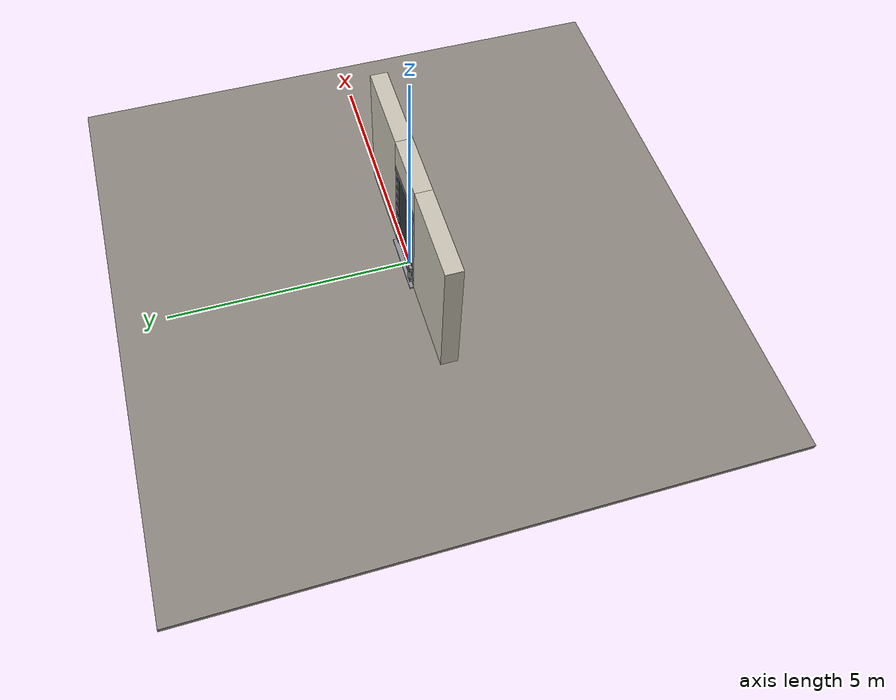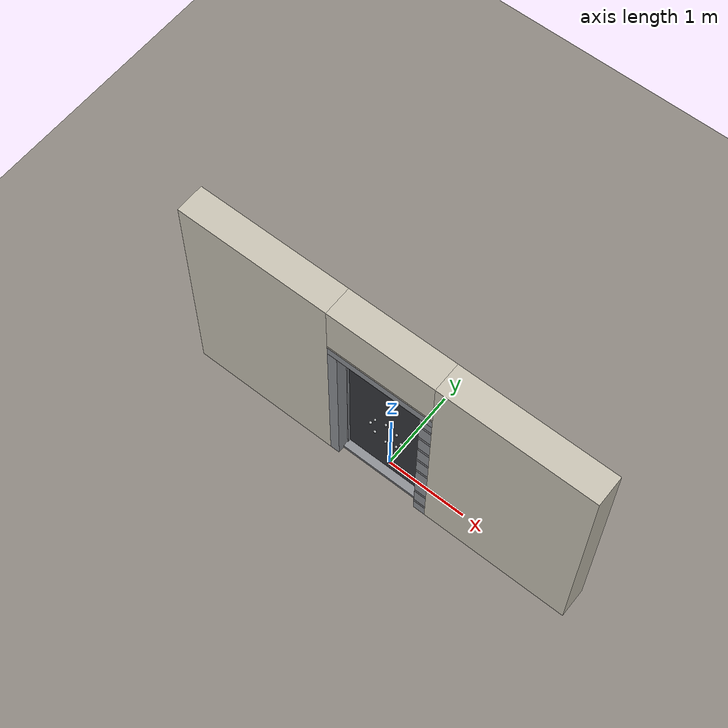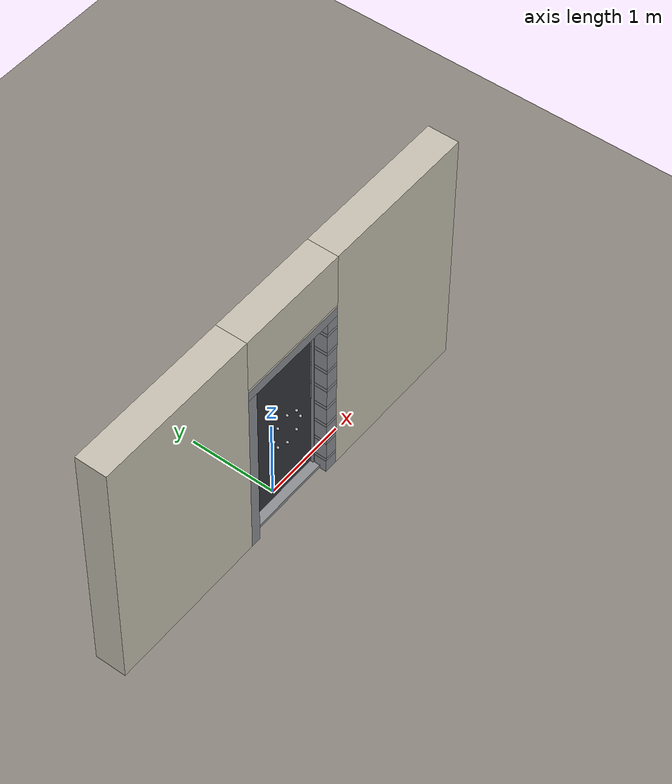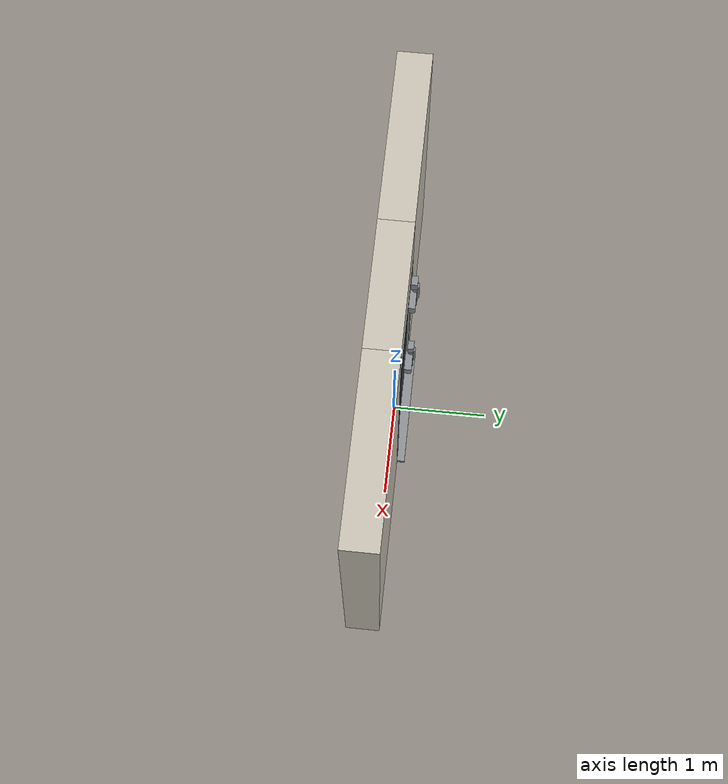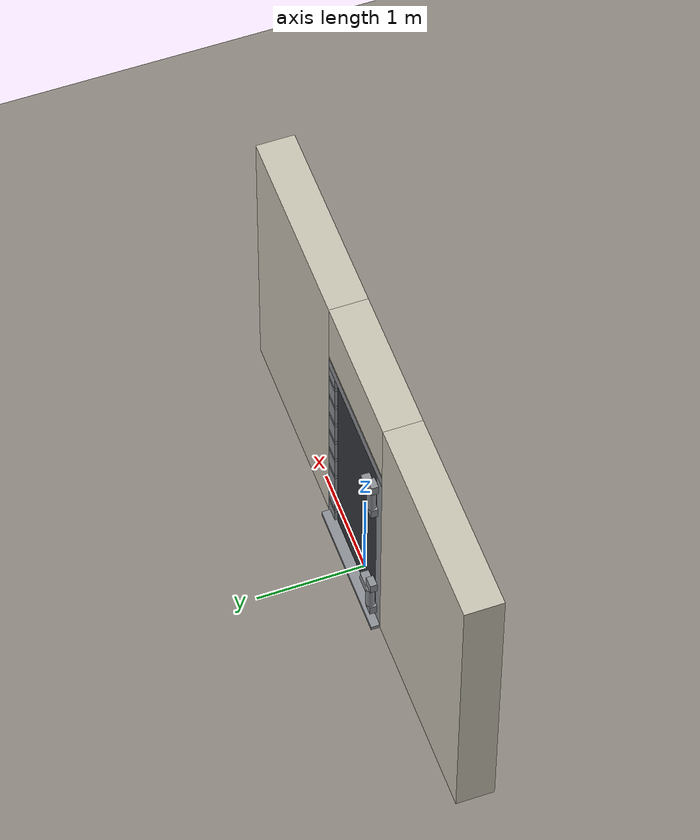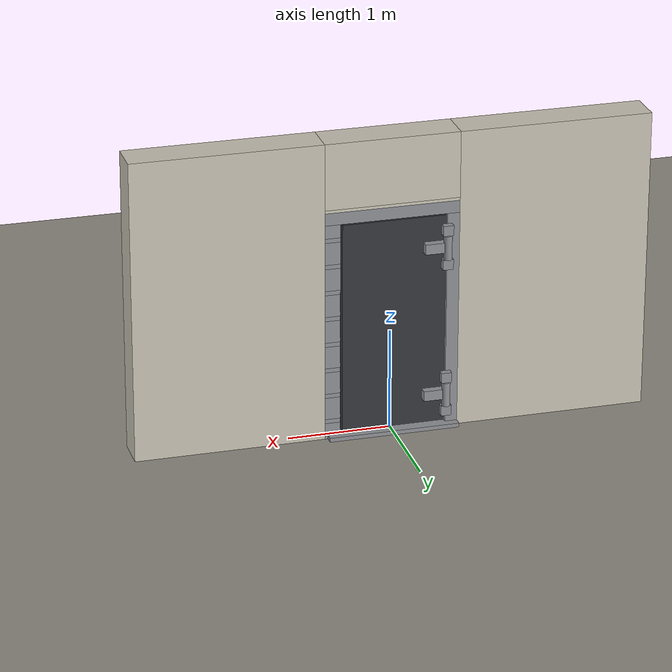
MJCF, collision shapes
<?xml version="1.0" ?>
<mujoco model="db0921_vault_full">
  <compiler angle="radian" meshdir="../../hardware" texturedir="../../textures" autolimits="true" inertiafromgeom="false"/>
  <option timestep="0.002" integrator="implicitfast" cone="elliptic" impratio="10" noslip_iterations="3">
    <flag multiccd="enable"/>
  </option>
  <size memory="16M"/>
  <default>
    <geom condim="4" solref="0.005 1" solimp="0.95 0.99 0.001"/>
    <joint solreflimit="0.005 1" solimplimit="0.95 0.99 0.001"/>
    <tendon solreflimit="0.005 1"/>
    <equality solref="0.002 1"/>
  </default>
  <visual>
    <headlight ambient="0.4 0.4 0.4" diffuse="0.7 0.7 0.7" specular="0.2 0.2 0.2"/>
    <quality shadowsize="4096"/>
    <map znear="0.01" zfar="60"/>
  </visual>
  <asset>
    <mesh name="wheel_3a0bfbe305" file="wheel_3a0bfbe305.obj"/>
    <material name="mat_floor" rgba="0.55 0.53 0.5 1" specular="0.2" shininess="0.15" reflectance="0"/>
    <material name="mat_wall" rgba="0.78 0.76 0.7 1" specular="0.2" shininess="0.1" reflectance="0"/>
    <material name="mat_leaf" rgba="0.2 0.21 0.23 1" specular="0.23" shininess="0.31" reflectance="0.02"/>
    <material name="mat_op_stainless" rgba="0.75 0.76 0.77 1" specular="0.8" shininess="0.65" reflectance="0.4"/>
    <material name="mat_trim" rgba="0.85 0.66 0.3 1" specular="0.8" shininess="0.75" reflectance="0.4"/>
    <material name="mat_vault_bolt" rgba="0.75 0.76 0.77 1" specular="0.8" shininess="0.65" reflectance="0.4"/>
    <material name="mat_frame" rgba="0.55 0.56 0.58 1" specular="0.8" shininess="0.55" reflectance="0.4"/>
    <material name="mat_hinge" rgba="0.55 0.56 0.58 1" specular="0.8" shininess="0.55" reflectance="0.4"/>
    <texture name="skybox" type="skybox" builtin="gradient" rgb1="0.6 0.7 0.85" rgb2="0.9 0.92 0.95" width="256" height="256"/>
  </asset>
  <worldbody>
    <light name="sun" pos="1.5 -2.5 4" dir="-0.3 0.5 -0.8" directional="true" diffuse="0.8 0.8 0.8" specular="0.3 0.3 0.3" castshadow="true"/>
    <light name="fill" pos="-1.5 2.5 3" dir="0.3 -0.5 -0.7" directional="true" diffuse="0.35 0.35 0.4" castshadow="false"/>
    <camera name="robot_view" pos="0 -2.739375 1.829625" xyaxes="1 0 0 0 0.26963 0.962964" fovy="52"/>
    <camera name="far_view" pos="0 2.579375 1.829625" xyaxes="-1 0 0 0 -0.26963 0.962964" fovy="52"/>
    <camera name="iso" pos="2.021125 -2.313875 2.255125" xyaxes="0.741536 0.670913 0 -0.242917 0.268487 0.932151" fovy="46"/>
    <camera name="detail_handle" pos="0.22 -0.955 1.53" xyaxes="0.97561 0.219512 0 -0.070934 0.315262 0.94635" fovy="38"/>
    <geom name="floor" type="box" size="6 6 0.05" pos="0 0 -0.05" material="mat_floor" group="0" contype="1" conaffinity="1" friction="0.8 0.005 0.0001" density="2400"/>
    <geom name="wall_left" type="box" size="0.932 0.175 1.485" pos="-1.568 -0.08 1.485" material="mat_wall" group="0" contype="1" conaffinity="1" friction="0.6 0.005 0.0001" density="800"/>
    <geom name="wall_right" type="box" size="0.917 0.175 1.485" pos="1.583 -0.08 1.485" material="mat_wall" group="0" contype="1" conaffinity="1" friction="0.6 0.005 0.0001" density="800"/>
    <geom name="wall_header" type="box" size="0.651 0.175 0.325" pos="0.015 -0.08 2.645" material="mat_wall" group="0" contype="1" conaffinity="1" friction="0.6 0.005 0.0001" density="800"/>
    <geom name="jamb_hinge" type="box" size="0.06 0.175 1.085" pos="-0.576 -0.08 1.085" material="mat_frame" group="0" contype="1" conaffinity="1" friction="0.6 0.005 0.0001" density="300"/>
    <geom name="strike_181_wall_n" type="box" size="0.075 0.1185 0.021" pos="0.591 -0.1365 0.18125" material="mat_frame" group="0" contype="1" conaffinity="1" friction="0.6 0.005 0.0001" density="300"/>
    <geom name="strike_181_wall_p" type="box" size="0.075 0.0385 0.021" pos="0.591 0.0565 0.18125" material="mat_frame" group="0" contype="1" conaffinity="1" friction="0.6 0.005 0.0001" density="300"/>
    <geom name="strike_181_back" type="box" size="0.036 0.018 0.021" pos="0.63 0 0.18125" material="mat_frame" group="0" contype="1" conaffinity="1" friction="0.6 0.005 0.0001" density="300"/>
    <geom name="strike_444_wall_n" type="box" size="0.075 0.1185 0.021" pos="0.591 -0.1365 0.44375" material="mat_frame" group="0" contype="1" conaffinity="1" friction="0.6 0.005 0.0001" density="300"/>
    <geom name="strike_444_wall_p" type="box" size="0.075 0.0385 0.021" pos="0.591 0.0565 0.44375" material="mat_frame" group="0" contype="1" conaffinity="1" friction="0.6 0.005 0.0001" density="300"/>
    <geom name="strike_444_back" type="box" size="0.036 0.018 0.021" pos="0.63 0 0.44375" material="mat_frame" group="0" contype="1" conaffinity="1" friction="0.6 0.005 0.0001" density="300"/>
    <geom name="strike_706_wall_n" type="box" size="0.075 0.1185 0.021" pos="0.591 -0.1365 0.70625" material="mat_frame" group="0" contype="1" conaffinity="1" friction="0.6 0.005 0.0001" density="300"/>
    <geom name="strike_706_wall_p" type="box" size="0.075 0.0385 0.021" pos="0.591 0.0565 0.70625" material="mat_frame" group="0" contype="1" conaffinity="1" friction="0.6 0.005 0.0001" density="300"/>
    <geom name="strike_706_back" type="box" size="0.036 0.018 0.021" pos="0.63 0 0.70625" material="mat_frame" group="0" contype="1" conaffinity="1" friction="0.6 0.005 0.0001" density="300"/>
    <geom name="strike_969_wall_n" type="box" size="0.075 0.1185 0.021" pos="0.591 -0.1365 0.96875" material="mat_frame" group="0" contype="1" conaffinity="1" friction="0.6 0.005 0.0001" density="300"/>
    <geom name="strike_969_wall_p" type="box" size="0.075 0.0385 0.021" pos="0.591 0.0565 0.96875" material="mat_frame" group="0" contype="1" conaffinity="1" friction="0.6 0.005 0.0001" density="300"/>
    <geom name="strike_969_back" type="box" size="0.036 0.018 0.021" pos="0.63 0 0.96875" material="mat_frame" group="0" contype="1" conaffinity="1" friction="0.6 0.005 0.0001" density="300"/>
    <geom name="strike_1231_wall_n" type="box" size="0.075 0.1185 0.021" pos="0.591 -0.1365 1.23125" material="mat_frame" group="0" contype="1" conaffinity="1" friction="0.6 0.005 0.0001" density="300"/>
    <geom name="strike_1231_wall_p" type="box" size="0.075 0.0385 0.021" pos="0.591 0.0565 1.23125" material="mat_frame" group="0" contype="1" conaffinity="1" friction="0.6 0.005 0.0001" density="300"/>
    <geom name="strike_1231_back" type="box" size="0.036 0.018 0.021" pos="0.63 0 1.23125" material="mat_frame" group="0" contype="1" conaffinity="1" friction="0.6 0.005 0.0001" density="300"/>
    <geom name="strike_1494_wall_n" type="box" size="0.075 0.1185 0.021" pos="0.591 -0.1365 1.49375" material="mat_frame" group="0" contype="1" conaffinity="1" friction="0.6 0.005 0.0001" density="300"/>
    <geom name="strike_1494_wall_p" type="box" size="0.075 0.0385 0.021" pos="0.591 0.0565 1.49375" material="mat_frame" group="0" contype="1" conaffinity="1" friction="0.6 0.005 0.0001" density="300"/>
    <geom name="strike_1494_back" type="box" size="0.036 0.018 0.021" pos="0.63 0 1.49375" material="mat_frame" group="0" contype="1" conaffinity="1" friction="0.6 0.005 0.0001" density="300"/>
    <geom name="strike_1756_wall_n" type="box" size="0.075 0.1185 0.021" pos="0.591 -0.1365 1.75625" material="mat_frame" group="0" contype="1" conaffinity="1" friction="0.6 0.005 0.0001" density="300"/>
    <geom name="strike_1756_wall_p" type="box" size="0.075 0.0385 0.021" pos="0.591 0.0565 1.75625" material="mat_frame" group="0" contype="1" conaffinity="1" friction="0.6 0.005 0.0001" density="300"/>
    <geom name="strike_1756_back" type="box" size="0.036 0.018 0.021" pos="0.63 0 1.75625" material="mat_frame" group="0" contype="1" conaffinity="1" friction="0.6 0.005 0.0001" density="300"/>
    <geom name="strike_2019_wall_n" type="box" size="0.075 0.1185 0.021" pos="0.591 -0.1365 2.01875" material="mat_frame" group="0" contype="1" conaffinity="1" friction="0.6 0.005 0.0001" density="300"/>
    <geom name="strike_2019_wall_p" type="box" size="0.075 0.0385 0.021" pos="0.591 0.0565 2.01875" material="mat_frame" group="0" contype="1" conaffinity="1" friction="0.6 0.005 0.0001" density="300"/>
    <geom name="strike_2019_back" type="box" size="0.036 0.018 0.021" pos="0.63 0 2.01875" material="mat_frame" group="0" contype="1" conaffinity="1" friction="0.6 0.005 0.0001" density="300"/>
    <geom name="jamb_strike_0" type="box" size="0.075 0.175 0.080125" pos="0.591 -0.08 0.080125" material="mat_frame" group="0" contype="1" conaffinity="1" friction="0.6 0.005 0.0001" density="300"/>
    <geom name="jamb_strike_1" type="box" size="0.075 0.175 0.11025" pos="0.591 -0.08 0.3125" material="mat_frame" group="0" contype="1" conaffinity="1" friction="0.6 0.005 0.0001" density="300"/>
    <geom name="jamb_strike_2" type="box" size="0.075 0.175 0.11025" pos="0.591 -0.08 0.575" material="mat_frame" group="0" contype="1" conaffinity="1" friction="0.6 0.005 0.0001" density="300"/>
    <geom name="jamb_strike_3" type="box" size="0.075 0.175 0.11025" pos="0.591 -0.08 0.8375" material="mat_frame" group="0" contype="1" conaffinity="1" friction="0.6 0.005 0.0001" density="300"/>
    <geom name="jamb_strike_4" type="box" size="0.075 0.175 0.11025" pos="0.591 -0.08 1.1" material="mat_frame" group="0" contype="1" conaffinity="1" friction="0.6 0.005 0.0001" density="300"/>
    <geom name="jamb_strike_5" type="box" size="0.075 0.175 0.11025" pos="0.591 -0.08 1.3625" material="mat_frame" group="0" contype="1" conaffinity="1" friction="0.6 0.005 0.0001" density="300"/>
    <geom name="jamb_strike_6" type="box" size="0.075 0.175 0.11025" pos="0.591 -0.08 1.625" material="mat_frame" group="0" contype="1" conaffinity="1" friction="0.6 0.005 0.0001" density="300"/>
    <geom name="jamb_strike_7" type="box" size="0.075 0.175 0.11025" pos="0.591 -0.08 1.8875" material="mat_frame" group="0" contype="1" conaffinity="1" friction="0.6 0.005 0.0001" density="300"/>
    <geom name="jamb_strike_8" type="box" size="0.075 0.175 0.065125" pos="0.591 -0.08 2.104875" material="mat_frame" group="0" contype="1" conaffinity="1" friction="0.6 0.005 0.0001" density="300"/>
    <geom name="jamb_head" type="box" size="0.651 0.175 0.06" pos="0.015 -0.08 2.23" material="mat_frame" group="0" contype="1" conaffinity="1" friction="0.6 0.005 0.0001" density="300"/>
    <geom name="head_stud" type="box" size="0.651 0.175 0.015" pos="0.015 -0.08 2.305" material="mat_wall" group="0" contype="1" conaffinity="1" friction="0.6 0.005 0.0001" density="500"/>
    <geom name="stop_hinge" type="box" size="0.0055 0.016 1.085" pos="-0.5105 -0.0915 1.085" material="mat_frame" group="0" contype="1" conaffinity="1" friction="0.6 0.005 0.0001" density="300"/>
    <geom name="stop_strike" type="box" size="0.0055 0.016 1.085" pos="0.5105 -0.0915 1.085" material="mat_frame" group="0" contype="1" conaffinity="1" friction="0.6 0.005 0.0001" density="300"/>
    <geom name="stop_head" type="box" size="0.516 0.016 0.0055" pos="0 -0.0915 2.1645" material="mat_frame" group="0" contype="1" conaffinity="1" friction="0.6 0.005 0.0001" density="300"/>
    <geom name="sill_step" type="box" size="0.636 0.175 0.02" pos="0 0 0.02" material="mat_frame" group="0" contype="1" conaffinity="1" friction="0.6 0.005 0.0001" density="7850"/>
    <geom name="hinge_0_bracket_b" type="box" size="0.05 0.0325 0.05" pos="-0.51 0.1275 0.18" material="mat_hinge" group="1" contype="0" conaffinity="0" density="7850"/>
    <geom name="hinge_0_bracket_t" type="box" size="0.05 0.0325 0.05" pos="-0.51 0.1275 0.52" material="mat_hinge" group="1" contype="0" conaffinity="0" density="7850"/>
    <geom name="hinge_1_bracket_b" type="box" size="0.05 0.0325 0.05" pos="-0.51 0.1275 1.68" material="mat_hinge" group="1" contype="0" conaffinity="0" density="7850"/>
    <geom name="hinge_1_bracket_t" type="box" size="0.05 0.0325 0.05" pos="-0.51 0.1275 2.02" material="mat_hinge" group="1" contype="0" conaffinity="0" density="7850"/>
    <site name="approach_point" pos="0 -1.5 0" quat="1 0 0 0" size="0.05" rgba="0.2 0.9 0.2 0.5" group="4"/>
    <site name="goal_point" pos="0 1.5 0" quat="1 0 0 0" size="0.05" rgba="0.2 0.9 0.2 0.5" group="4"/>
    <site name="door_plane_center" pos="0 0 1.085" quat="1 0 0 0" size="0.02" rgba="0.2 0.9 0.2 0.5" group="4"/>
    <body name="leaf" pos="-0.516 0 0">
      <inertial pos="0.488244 0.005112 1.1" mass="1134.727864" quat="0.506295 0.493625 -0.506295 0.493625" diaginertia="102.120032114 428.867689869 525.57919466"/>
      <joint name="leaf_hinge" type="hinge" axis="0 0 1" pos="0.006 0.14 0" limited="true" range="0 1.745329" damping="0.42926" frictionloss="39.837661" armature="0.5"/>
      <geom name="leaf_slab" type="box" size="0.5 0.075 1.05" pos="0.506 0 1.1" material="mat_leaf" group="0" contype="1" conaffinity="1" friction="0.45 0.005 0.0001" density="1"/>
      <geom name="hinge_0" type="cylinder" size="0.04 0.12" pos="0.006 0.14 0.35" material="mat_hinge" group="1" contype="0" conaffinity="0" density="7850"/>
      <geom name="hinge_0_arm" type="box" size="0.11 0.04 0.05" pos="0.116 0.115 0.35" material="mat_hinge" group="1" contype="0" conaffinity="0" density="7850"/>
      <geom name="hinge_1" type="cylinder" size="0.04 0.12" pos="0.006 0.14 1.85" material="mat_hinge" group="1" contype="0" conaffinity="0" density="7850"/>
      <geom name="hinge_1_arm" type="box" size="0.11 0.04 0.05" pos="0.116 0.115 1.85" material="mat_hinge" group="1" contype="0" conaffinity="0" density="7850"/>
      <body name="wheel" pos="0.556 0 1.05">
        <inertial pos="0 -0.145638 0" mass="3.913848" quat="0.707107 -0.707107 0 0" diaginertia="0.063937187 0.063937187 0.115747168"/>
        <joint name="wheel_hinge" type="hinge" axis="0 -1 0" limited="true" range="0 6.2832" damping="0.5" frictionloss="5" armature="0.01"/>
        <geom name="wheel_spindle" type="cylinder" size="0.006 0.075" pos="0 0 0" quat="0.707107 -0.707107 0 0" material="mat_op_stainless" group="1" contype="0" conaffinity="0" density="7850"/>
        <geom name="wheel_wheel_n" type="mesh" mesh="wheel_3a0bfbe305" pos="0 -0.075 0" quat="0.707107 0.707107 0 0" material="mat_op_stainless" group="1" contype="0" conaffinity="0" density="3000"/>
        <geom name="wheel_wheel_col_0_n" type="sphere" size="0.015" pos="0.2 -0.155 0" material="mat_op_stainless" group="0" contype="1" conaffinity="1" friction="0.6 0.005 0.0001" density="3000"/>
        <geom name="wheel_wheel_col_1_n" type="sphere" size="0.015" pos="0.141421 -0.155 0.141421" material="mat_op_stainless" group="0" contype="1" conaffinity="1" friction="0.6 0.005 0.0001" density="3000"/>
        <geom name="wheel_wheel_col_2_n" type="sphere" size="0.015" pos="0 -0.155 0.2" material="mat_op_stainless" group="0" contype="1" conaffinity="1" friction="0.6 0.005 0.0001" density="3000"/>
        <geom name="wheel_wheel_col_3_n" type="sphere" size="0.015" pos="-0.141421 -0.155 0.141421" material="mat_op_stainless" group="0" contype="1" conaffinity="1" friction="0.6 0.005 0.0001" density="3000"/>
        <geom name="wheel_wheel_col_4_n" type="sphere" size="0.015" pos="-0.2 -0.155 0" material="mat_op_stainless" group="0" contype="1" conaffinity="1" friction="0.6 0.005 0.0001" density="3000"/>
        <geom name="wheel_wheel_col_5_n" type="sphere" size="0.015" pos="-0.141421 -0.155 -0.141421" material="mat_op_stainless" group="0" contype="1" conaffinity="1" friction="0.6 0.005 0.0001" density="3000"/>
        <geom name="wheel_wheel_col_6_n" type="sphere" size="0.015" pos="0 -0.155 -0.2" material="mat_op_stainless" group="0" contype="1" conaffinity="1" friction="0.6 0.005 0.0001" density="3000"/>
        <geom name="wheel_wheel_col_7_n" type="sphere" size="0.015" pos="0.141421 -0.155 -0.141421" material="mat_op_stainless" group="0" contype="1" conaffinity="1" friction="0.6 0.005 0.0001" density="3000"/>
        <site name="wheel_grip_n" pos="0 -0.155 0.2" quat="1 0 0 0" size="0.012" rgba="0.2 0.9 0.2 0.5" group="4"/>
      </body>
      <body name="bolt_0" pos="1.006 0 0.18125">
        <inertial pos="-0.004 0 0" mass="0.892286" quat="0 0 0.707107 0.707107" diaginertia="0.000110765 0.001553238 0.001553238"/>
        <joint name="bolt_0_slide" type="slide" axis="-1 0 0" limited="true" range="0 0.072" damping="20" frictionloss="25" armature="0.1"/>
        <geom name="bolt_0_geom" type="capsule" size="0.016 0.06" pos="-0.004 0 0" quat="0.707107 0 0.707107 0" material="mat_vault_bolt" group="0" contype="1" conaffinity="1" friction="0.6 0.005 0.0001" density="7850"/>
      </body>
      <body name="bolt_1" pos="1.006 0 0.44375">
        <inertial pos="-0.004 0 0" mass="0.892286" quat="0 0 0.707107 0.707107" diaginertia="0.000110765 0.001553238 0.001553238"/>
        <joint name="bolt_1_slide" type="slide" axis="-1 0 0" limited="true" range="0 0.072" damping="20" frictionloss="25" armature="0.1"/>
        <geom name="bolt_1_geom" type="capsule" size="0.016 0.06" pos="-0.004 0 0" quat="0.707107 0 0.707107 0" material="mat_vault_bolt" group="0" contype="1" conaffinity="1" friction="0.6 0.005 0.0001" density="7850"/>
      </body>
      <body name="bolt_2" pos="1.006 0 0.70625">
        <inertial pos="-0.004 0 0" mass="0.892286" quat="0 0 0.707107 0.707107" diaginertia="0.000110765 0.001553238 0.001553238"/>
        <joint name="bolt_2_slide" type="slide" axis="-1 0 0" limited="true" range="0 0.072" damping="20" frictionloss="25" armature="0.1"/>
        <geom name="bolt_2_geom" type="capsule" size="0.016 0.06" pos="-0.004 0 0" quat="0.707107 0 0.707107 0" material="mat_vault_bolt" group="0" contype="1" conaffinity="1" friction="0.6 0.005 0.0001" density="7850"/>
      </body>
      <body name="bolt_3" pos="1.006 0 0.96875">
        <inertial pos="-0.004 0 0" mass="0.892286" quat="0 0 0.707107 0.707107" diaginertia="0.000110765 0.001553238 0.001553238"/>
        <joint name="bolt_3_slide" type="slide" axis="-1 0 0" limited="true" range="0 0.072" damping="20" frictionloss="25" armature="0.1"/>
        <geom name="bolt_3_geom" type="capsule" size="0.016 0.06" pos="-0.004 0 0" quat="0.707107 0 0.707107 0" material="mat_vault_bolt" group="0" contype="1" conaffinity="1" friction="0.6 0.005 0.0001" density="7850"/>
      </body>
      <body name="bolt_4" pos="1.006 0 1.23125">
        <inertial pos="-0.004 0 0" mass="0.892286" quat="0 0 0.707107 0.707107" diaginertia="0.000110765 0.001553238 0.001553238"/>
        <joint name="bolt_4_slide" type="slide" axis="-1 0 0" limited="true" range="0 0.072" damping="20" frictionloss="25" armature="0.1"/>
        <geom name="bolt_4_geom" type="capsule" size="0.016 0.06" pos="-0.004 0 0" quat="0.707107 0 0.707107 0" material="mat_vault_bolt" group="0" contype="1" conaffinity="1" friction="0.6 0.005 0.0001" density="7850"/>
      </body>
      <body name="bolt_5" pos="1.006 0 1.49375">
        <inertial pos="-0.004 0 0" mass="0.892286" quat="0 0 0.707107 0.707107" diaginertia="0.000110765 0.001553238 0.001553238"/>
        <joint name="bolt_5_slide" type="slide" axis="-1 0 0" limited="true" range="0 0.072" damping="20" frictionloss="25" armature="0.1"/>
        <geom name="bolt_5_geom" type="capsule" size="0.016 0.06" pos="-0.004 0 0" quat="0.707107 0 0.707107 0" material="mat_vault_bolt" group="0" contype="1" conaffinity="1" friction="0.6 0.005 0.0001" density="7850"/>
      </body>
      <body name="bolt_6" pos="1.006 0 1.75625">
        <inertial pos="-0.004 0 0" mass="0.892286" quat="0 0 0.707107 0.707107" diaginertia="0.000110765 0.001553238 0.001553238"/>
        <joint name="bolt_6_slide" type="slide" axis="-1 0 0" limited="true" range="0 0.072" damping="20" frictionloss="25" armature="0.1"/>
        <geom name="bolt_6_geom" type="capsule" size="0.016 0.06" pos="-0.004 0 0" quat="0.707107 0 0.707107 0" material="mat_vault_bolt" group="0" contype="1" conaffinity="1" friction="0.6 0.005 0.0001" density="7850"/>
      </body>
      <body name="bolt_7" pos="1.006 0 2.01875">
        <inertial pos="-0.004 0 0" mass="0.892286" quat="0 0 0.707107 0.707107" diaginertia="0.000110765 0.001553238 0.001553238"/>
        <joint name="bolt_7_slide" type="slide" axis="-1 0 0" limited="true" range="0 0.072" damping="20" frictionloss="25" armature="0.1"/>
        <geom name="bolt_7_geom" type="capsule" size="0.016 0.06" pos="-0.004 0 0" quat="0.707107 0 0.707107 0" material="mat_vault_bolt" group="0" contype="1" conaffinity="1" friction="0.6 0.005 0.0001" density="7850"/>
      </body>
    </body>
  </worldbody>
  <equality>
    <joint name="wheel_bolt_0" joint1="bolt_0_slide" joint2="wheel_hinge" polycoef="0 0.011459 0 0 0" active="true"/>
    <joint name="wheel_bolt_1" joint1="bolt_1_slide" joint2="wheel_hinge" polycoef="0 0.011459 0 0 0" active="true"/>
    <joint name="wheel_bolt_2" joint1="bolt_2_slide" joint2="wheel_hinge" polycoef="0 0.011459 0 0 0" active="true"/>
    <joint name="wheel_bolt_3" joint1="bolt_3_slide" joint2="wheel_hinge" polycoef="0 0.011459 0 0 0" active="true"/>
    <joint name="wheel_bolt_4" joint1="bolt_4_slide" joint2="wheel_hinge" polycoef="0 0.011459 0 0 0" active="true"/>
    <joint name="wheel_bolt_5" joint1="bolt_5_slide" joint2="wheel_hinge" polycoef="0 0.011459 0 0 0" active="true"/>
    <joint name="wheel_bolt_6" joint1="bolt_6_slide" joint2="wheel_hinge" polycoef="0 0.011459 0 0 0" active="true"/>
    <joint name="wheel_bolt_7" joint1="bolt_7_slide" joint2="wheel_hinge" polycoef="0 0.011459 0 0 0" active="true"/>
  </equality>
  <sensor>
    <jointpos name="leaf_hinge_pos" joint="leaf_hinge"/>
    <jointvel name="leaf_hinge_vel" joint="leaf_hinge"/>
    <jointpos name="wheel_hinge_pos" joint="wheel_hinge"/>
    <jointvel name="wheel_hinge_vel" joint="wheel_hinge"/>
    <jointpos name="bolt_0_slide_pos" joint="bolt_0_slide"/>
    <jointvel name="bolt_0_slide_vel" joint="bolt_0_slide"/>
    <jointpos name="bolt_1_slide_pos" joint="bolt_1_slide"/>
    <jointvel name="bolt_1_slide_vel" joint="bolt_1_slide"/>
    <jointpos name="bolt_2_slide_pos" joint="bolt_2_slide"/>
    <jointvel name="bolt_2_slide_vel" joint="bolt_2_slide"/>
    <jointpos name="bolt_3_slide_pos" joint="bolt_3_slide"/>
    <jointvel name="bolt_3_slide_vel" joint="bolt_3_slide"/>
    <jointpos name="bolt_4_slide_pos" joint="bolt_4_slide"/>
    <jointvel name="bolt_4_slide_vel" joint="bolt_4_slide"/>
    <jointpos name="bolt_5_slide_pos" joint="bolt_5_slide"/>
    <jointvel name="bolt_5_slide_vel" joint="bolt_5_slide"/>
    <jointpos name="bolt_6_slide_pos" joint="bolt_6_slide"/>
    <jointvel name="bolt_6_slide_vel" joint="bolt_6_slide"/>
    <jointpos name="bolt_7_slide_pos" joint="bolt_7_slide"/>
    <jointvel name="bolt_7_slide_vel" joint="bolt_7_slide"/>
  </sensor>
</mujoco>
